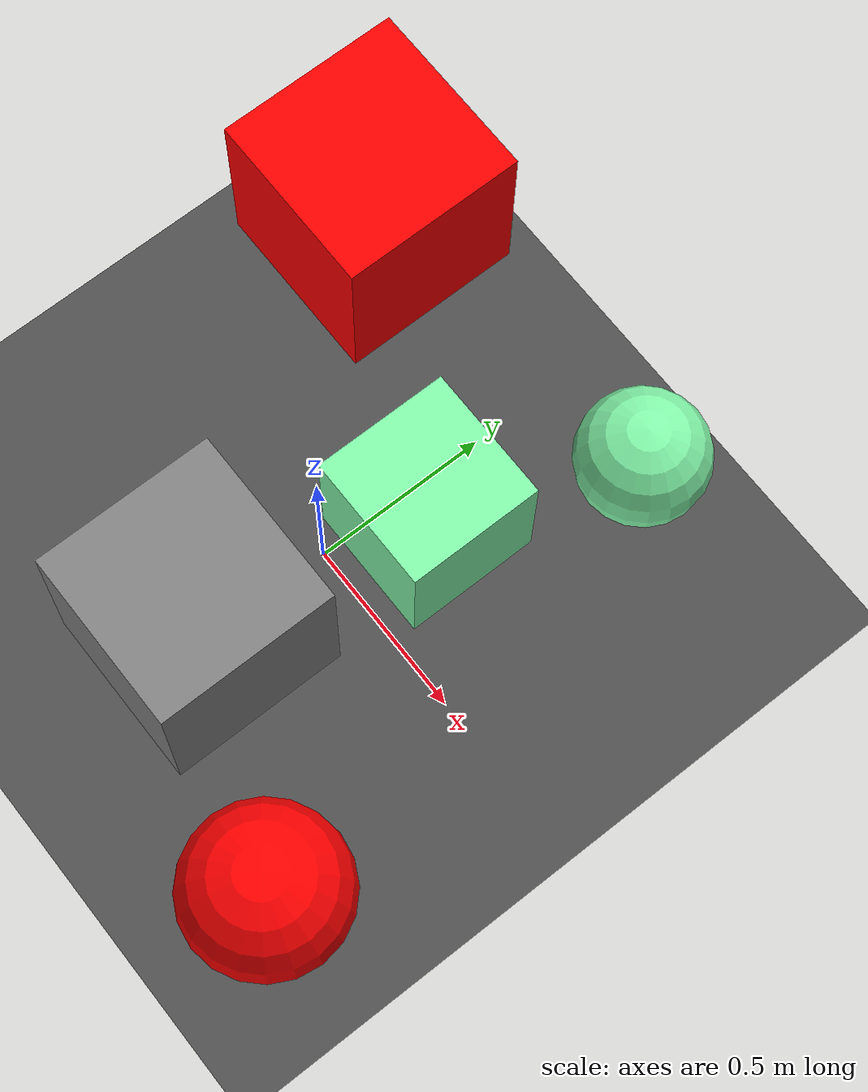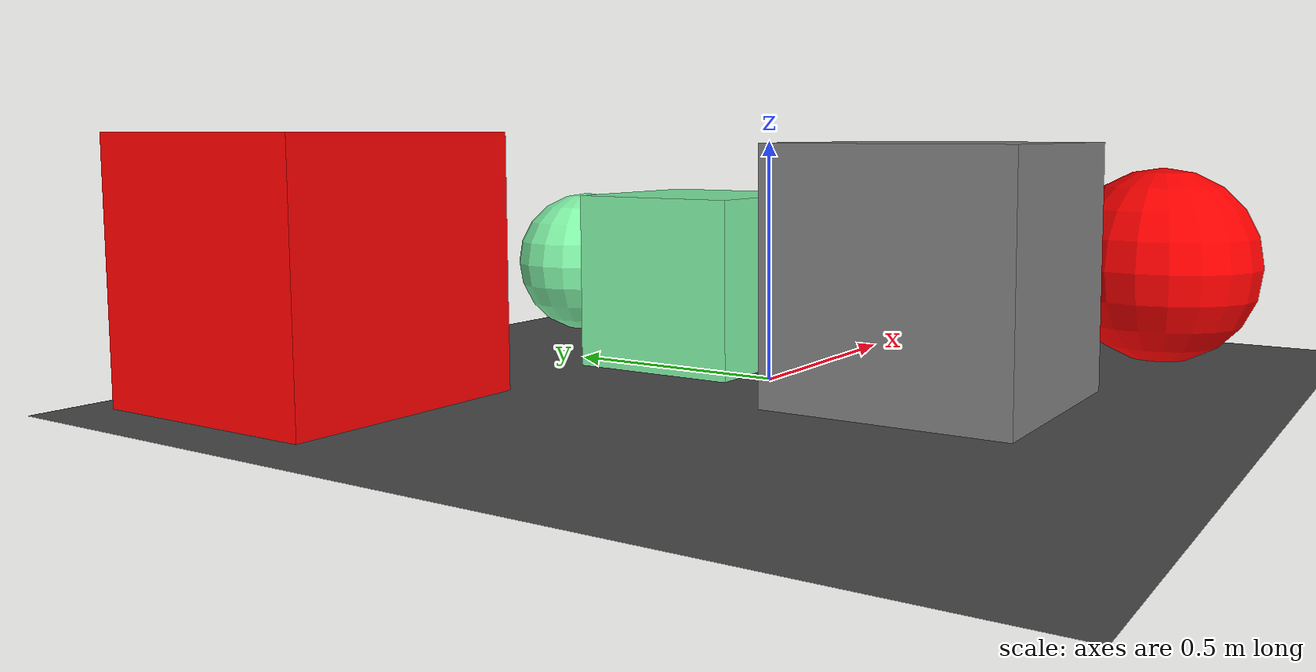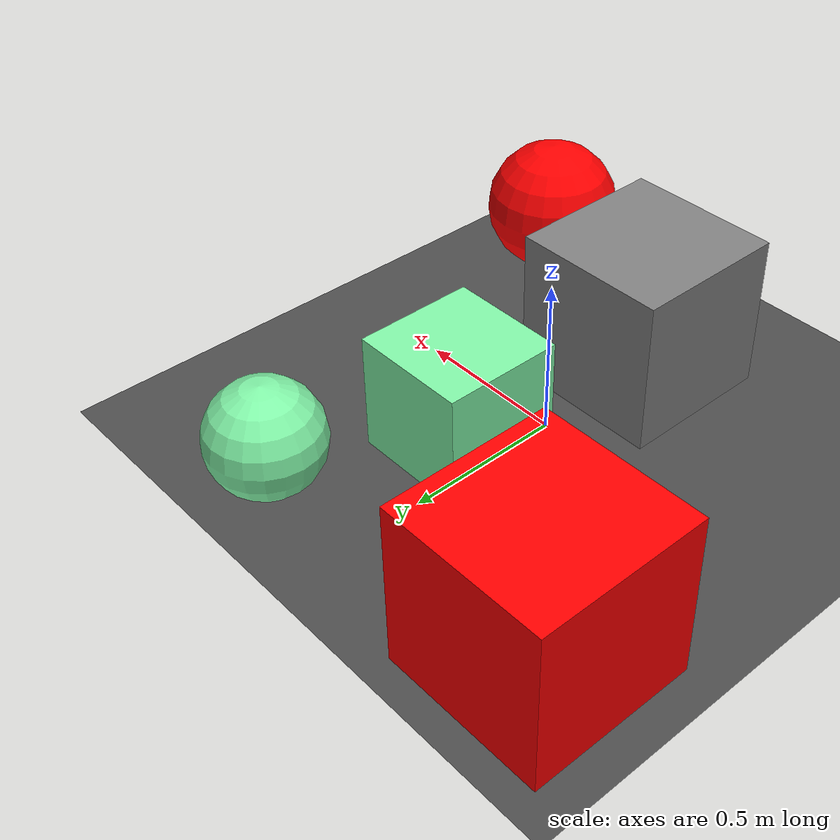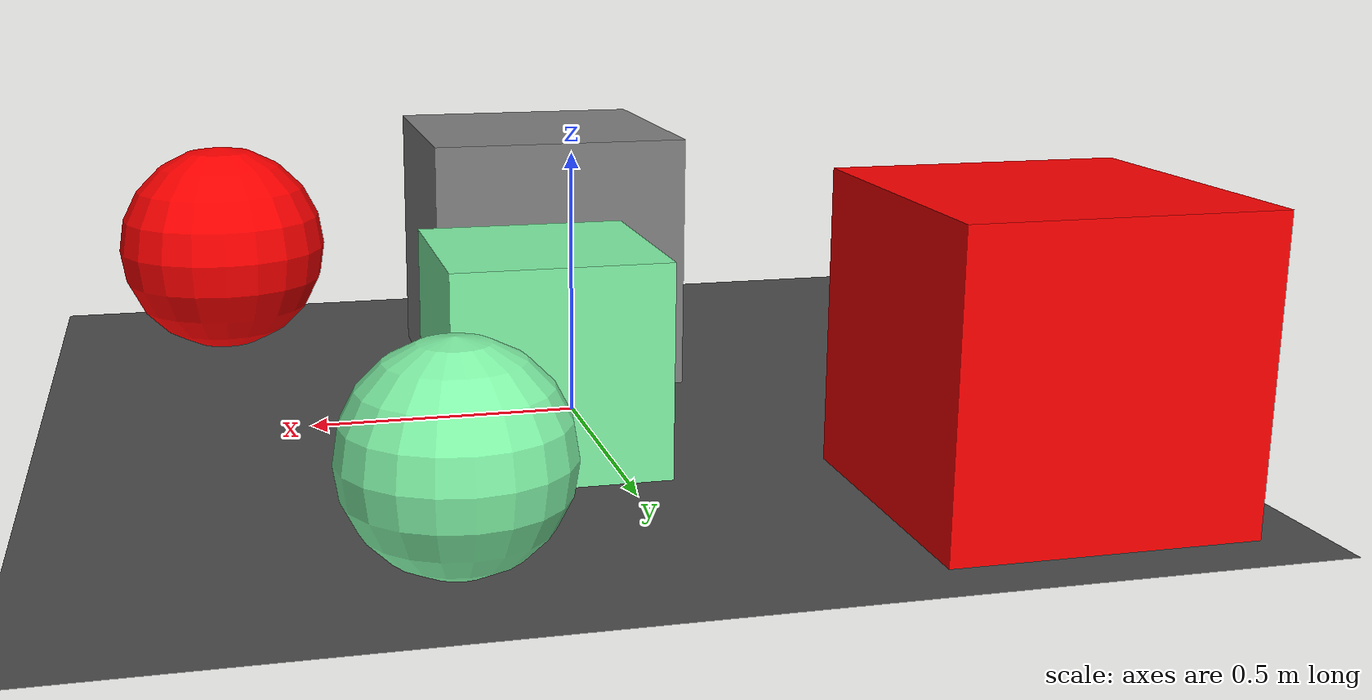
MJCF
<mujoco>
   <asset>
      <texture name="builtin_checker" builtin="checker" type="2d" rgb1="1 1 0" rgb2="0 0 1" width="200" height="200"/>
      <texture name="builtin_gradient" builtin="gradient" rgb1="0 .9 .3" rgb2="1 1 1" width="200" height="200"/>
      <texture name="builtin_flat" builtin="flat" rgb1="1 0 0" rgb2="1 0 0"  width="200" height="200"/>

      <material name="checker_mat" reflectance="0.9" texrepeat="3 3" texture="builtin_checker" texuniform="false" />
      <material name="gradient_mat" reflectance="1" texrepeat="1 1" texture="builtin_gradient" texuniform="true"/>
      <material name="flat_mat" reflectance="1" texrepeat="1 1" texture="builtin_flat" texuniform="true"/>
   </asset>

   <worldbody>
      <light diffuse=".9 .9 .9" pos="0 0 3" dir="0 0 -1"/>
     <geom type="plane" size="1 1 0.1" rgba="0.3 0.3 0.3 1"/>
<body pos="-0.01 -0.38 0.25">
<joint type="free"/>
 <geom type="box" size="0.25 0.25 0.25" material="checker_mat" />
</body>
<body pos="0.34 0.76 0.18">
<joint type="free"/>
 <geom type="sphere" size="0.18 0.18 0.18" material="gradient_mat" />
</body>
<body pos="0.11 0.25 0.19">
<joint type="free"/>
 <geom type="box" size="0.19 0.19 0.19" material="gradient_mat" />
</body>
<body pos="0.64 -0.65 0.22">
<joint type="free"/>
 <geom type="sphere" size="0.22 0.22 0.22" material="flat_mat" />
</body>
<body pos="-0.63 0.65 0.26">
<joint type="free"/>
 <geom type="box" size="0.26 0.26 0.26" material="flat_mat" />
</body><camera euler="60 0 180" fovy="60" name="camera_a" pos="0 -1.5 1"></camera>   </worldbody>
</mujoco>
